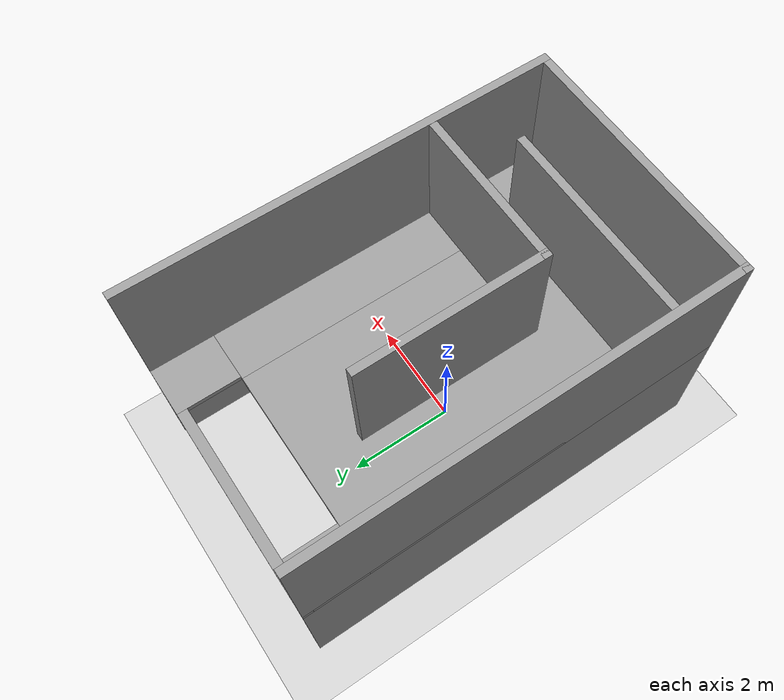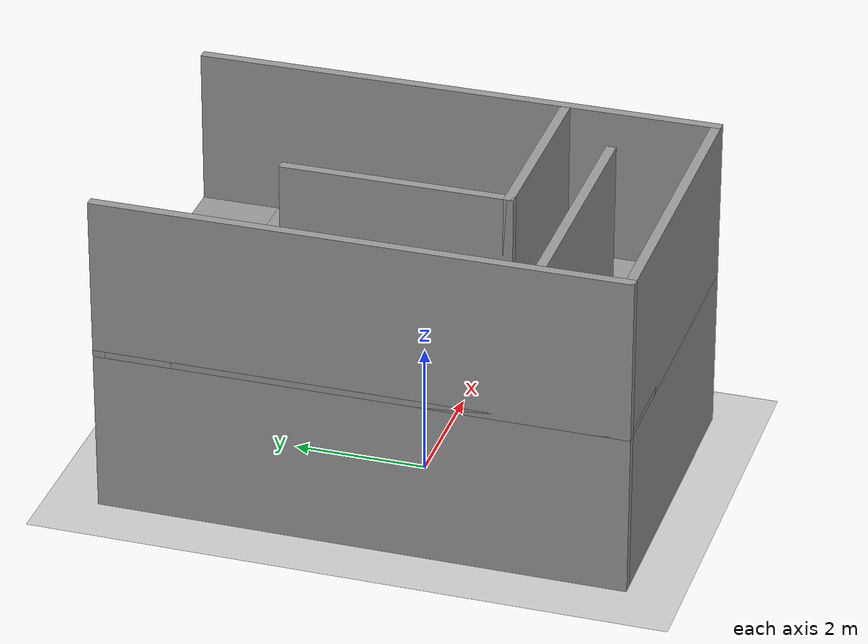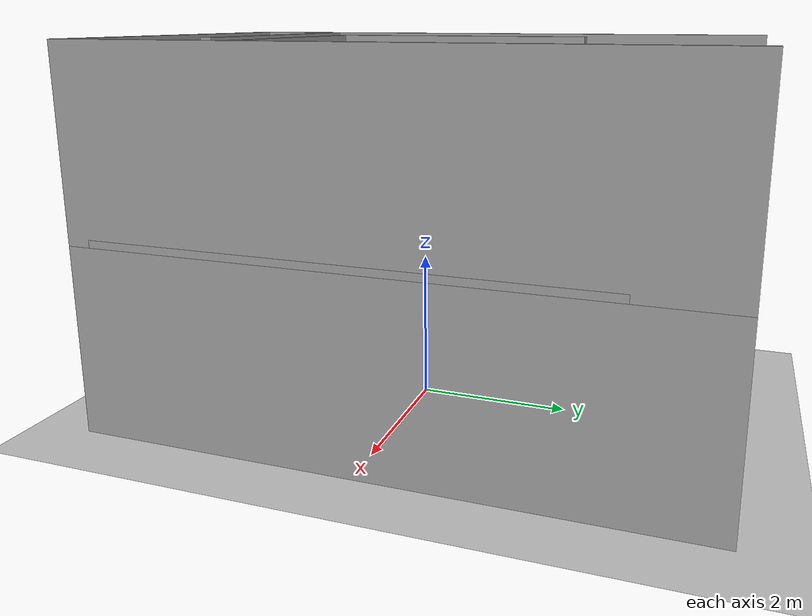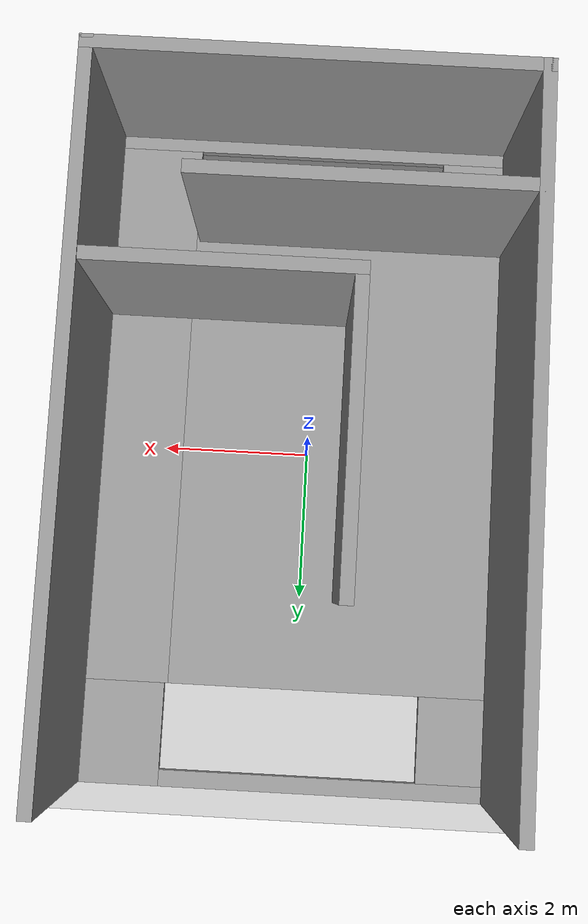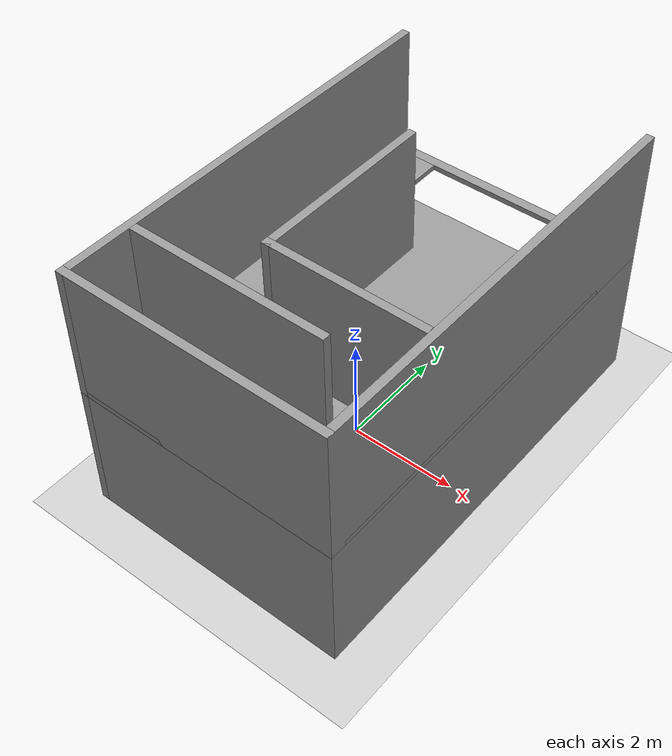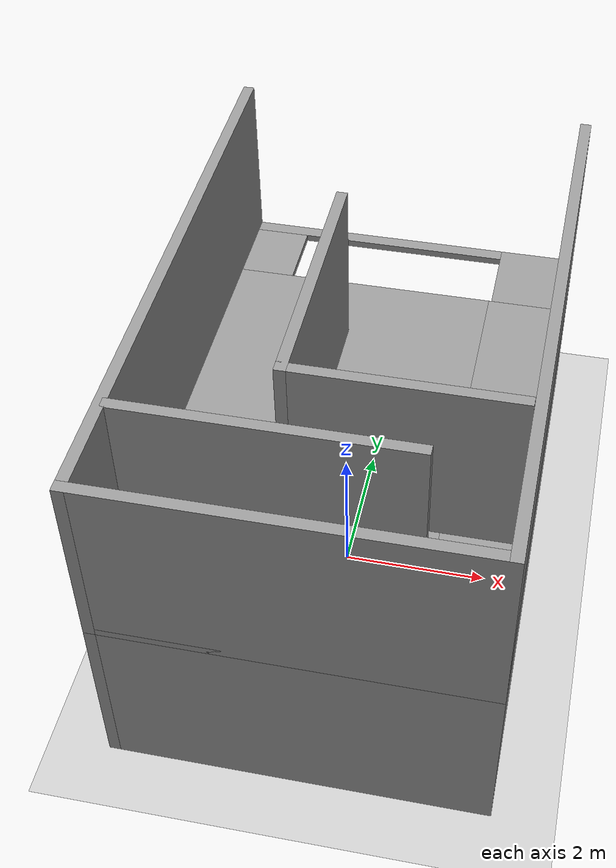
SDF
<sdf version="1.7">
 <world name="default">
  <model name="ground_plane">
   <static>1</static>
   <link name="link">
    <collision name="collision">
     <geometry><plane><normal>0 0 1</normal><size>100 100</size></plane></geometry>
     <surface>
      <contact><collide_bitmask>65535</collide_bitmask></contact>
      <friction><ode><mu>100</mu><mu2>50</mu2></ode></friction>
     </surface>
    </collision>
    <visual name="visual">
     <cast_shadows>0</cast_shadows>
     <geometry><plane><normal>0 0 1</normal><size>100 100</size></plane></geometry>
     <material>
      <script><uri>file://media/materials/scripts/gazebo.material</uri><name>Gazebo/Grey</name></script>
     </material>
    </visual>
   </link>
  </model>
  <model name="test2">
   <pose>-0.713184 1.43074 0 0 -0 1.57047</pose>
   <link name="Floor_0">
    <pose>-1.16289 -0.828418 2.5 0 -0 0</pose>
    <visual name="Floor_0_Visual_0">
     <pose>-3.84843 0 0.05 0 -0 0</pose>
     <geometry><box><size>0.303133 5 0.1</size></box></geometry>
     <material>
      <script><uri>file://media/materials/scripts/gazebo.material</uri><name>Gazebo/Grey</name></script>
      <ambient>1 1 1 1</ambient>
     </material>
     <meta><layer>1</layer></meta>
    </visual>
    <collision name="Floor_0_Collision_0">
     <geometry><box><size>0.303133 5 0.1</size></box></geometry>
     <pose>-3.84843 0 0.05 0 -0 0</pose>
    </collision>
    <visual name="Floor_0_Visual_1">
     <pose>-0.443444 -1.94023 0.05 0 -0 0</pose>
     <geometry><box><size>6.50685 1.11955 0.1</size></box></geometry>
     <material>
      <script><uri>file://media/materials/scripts/gazebo.material</uri><name>Gazebo/Grey</name></script>
      <ambient>1 1 1 1</ambient>
     </material>
     <meta><layer>1</layer></meta>
    </visual>
    <collision name="Floor_0_Collision_1">
     <geometry><box><size>6.50685 1.11955 0.1</size></box></geometry>
     <pose>-0.443444 -1.94023 0.05 0 -0 0</pose>
    </collision>
    <visual name="Floor_0_Visual_2">
     <pose>3.40499 -1.96002 0.05 0 -0 0</pose>
     <geometry><box><size>1.19002 1.07996 0.1</size></box></geometry>
     <material>
      <script><uri>file://media/materials/scripts/gazebo.material</uri><name>Gazebo/Grey</name></script>
      <ambient>1 1 1 1</ambient>
     </material>
     <meta><layer>1</layer></meta>
    </visual>
    <collision name="Floor_0_Collision_2">
     <geometry><box><size>1.19002 1.07996 0.1</size></box></geometry>
     <pose>3.40499 -1.96002 0.05 0 -0 0</pose>
    </collision>
    <visual name="Floor_0_Visual_3">
     <pose>3.90499 0.539981 0.05 0 -0 0</pose>
     <geometry><box><size>0.19002 3.92004 0.1</size></box></geometry>
     <material>
      <script><uri>file://media/materials/scripts/gazebo.material</uri><name>Gazebo/Grey</name></script>
      <ambient>1 1 1 1</ambient>
     </material>
     <meta><layer>1</layer></meta>
    </visual>
    <collision name="Floor_0_Collision_3">
     <geometry><box><size>0.19002 3.92004 0.1</size></box></geometry>
     <pose>3.90499 0.539981 0.05 0 -0 0</pose>
    </collision>
    <visual name="Floor_0_Visual_4">
     <pose>0.056556 0.559775 0.05 0 -0 0</pose>
     <geometry><box><size>5.50685 3.88045 0.1</size></box></geometry>
     <material>
      <script><uri>file://media/materials/scripts/gazebo.material</uri><name>Gazebo/Grey</name></script>
      <ambient>1 1 1 1</ambient>
     </material>
     <meta><layer>1</layer></meta>
    </visual>
    <collision name="Floor_0_Collision_4">
     <geometry><box><size>5.50685 3.88045 0.1</size></box></geometry>
     <pose>0.056556 0.559775 0.05 0 -0 0</pose>
    </collision>
    <visual name="Floor_0_Visual_5">
     <pose>3.30998 2.03998 0.05 0 -0 0</pose>
     <geometry><box><size>1 0.920038 0.1</size></box></geometry>
     <material>
      <script><uri>file://media/materials/scripts/gazebo.material</uri><name>Gazebo/Grey</name></script>
      <ambient>1 1 1 1</ambient>
     </material>
     <meta><layer>1</layer></meta>
    </visual>
    <collision name="Floor_0_Collision_5">
     <geometry><box><size>1 0.920038 0.1</size></box></geometry>
     <pose>3.30998 2.03998 0.05 0 -0 0</pose>
    </collision>
    <visual name="Floor_0_Visual_6">
     <pose>-3.19687 2.05978 0.05 0 -0 0</pose>
     <geometry><box><size>1 0.88045 0.1</size></box></geometry>
     <material>
      <script><uri>file://media/materials/scripts/gazebo.material</uri><name>Gazebo/Grey</name></script>
      <ambient>1 1 1 1</ambient>
     </material>
     <meta><layer>1</layer></meta>
    </visual>
    <collision name="Floor_0_Collision_6">
     <geometry><box><size>1 0.88045 0.1</size></box></geometry>
     <pose>-3.19687 2.05978 0.05 0 -0 0</pose>
    </collision>
   </link>
   <link name="Wall_36">
    <collision name="Wall_36_Collision">
     <geometry><box><size>5 0.15 2.5</size></box></geometry>
     <pose>0 0 1.25 0 -0 0</pose>
    </collision>
    <visual name="Wall_36_Visual">
     <pose>0 0 1.25 0 -0 0</pose>
     <geometry><box><size>5 0.15 2.5</size></box></geometry>
     <material>
      <script><uri>file://media/materials/scripts/gazebo.material</uri><name>Gazebo/Grey</name></script>
      <ambient>1 1 1 1</ambient>
     </material>
     <meta><layer>0</layer></meta>
    </visual>
    <pose>-5.08789 -0.828418 0 0 -0 -1.5708</pose>
   </link>
   <link name="Wall_37">
    <collision name="Wall_37_Collision">
     <geometry><box><size>8 0.15 2.5</size></box></geometry>
     <pose>0 0 1.25 0 -0 0</pose>
    </collision>
    <visual name="Wall_37_Visual">
     <pose>0 0 1.25 0 -0 0</pose>
     <geometry><box><size>8 0.15 2.5</size></box></geometry>
     <material>
      <script><uri>file://media/materials/scripts/gazebo.material</uri><name>Gazebo/Grey</name></script>
      <ambient>1 1 1 1</ambient>
     </material>
     <meta><layer>0</layer></meta>
    </visual>
    <pose>-1.16289 -3.25342 0 0 -0 0</pose>
   </link>
   <link name="Wall_39">
    <collision name="Wall_39_Collision">
     <geometry><box><size>8 0.15 2.5</size></box></geometry>
     <pose>0 0 1.25 0 -0 0</pose>
    </collision>
    <visual name="Wall_39_Visual">
     <pose>0 0 1.25 0 -0 0</pose>
     <geometry><box><size>8 0.15 2.5</size></box></geometry>
     <material>
      <script><uri>file://media/materials/scripts/gazebo.material</uri><name>Gazebo/Grey</name></script>
      <ambient>1 1 1 1</ambient>
     </material>
     <meta><layer>0</layer></meta>
    </visual>
    <pose>-1.16289 1.59658 0 0 -0 3.14159</pose>
   </link>
   <link name="Wall_41">
    <collision name="Wall_41_Collision">
     <geometry><box><size>3 0.15 2.5</size></box></geometry>
     <pose>0 0 1.25 0 -0 0</pose>
    </collision>
    <visual name="Wall_41_Visual">
     <pose>0 0 1.25 0 -0 0</pose>
     <geometry><box><size>3 0.15 2.5</size></box></geometry>
     <material>
      <script><uri>file://media/materials/scripts/gazebo.material</uri><name>Gazebo/Grey</name></script>
      <ambient>1 1 1 1</ambient>
     </material>
     <meta><layer>0</layer></meta>
    </visual>
    <pose>-2.84103 0.045931 0 0 -0 -1.5708</pose>
   </link>
   <link name="Wall_43">
    <collision name="Wall_43_Collision">
     <geometry><box><size>1.25 0.15 2.5</size></box></geometry>
     <pose>0 0 1.25 0 -0 0</pose>
    </collision>
    <visual name="Wall_43_Visual">
     <pose>0 0 1.25 0 -0 0</pose>
     <geometry><box><size>1.25 0.15 2.5</size></box></geometry>
     <material>
      <script><uri>file://media/materials/scripts/gazebo.material</uri><name>Gazebo/Grey</name></script>
      <ambient>1 1 1 1</ambient>
     </material>
     <meta><layer>0</layer></meta>
    </visual>
    <pose>-2.29103 -1.37907 0 0 -0 0</pose>
   </link>
   <link name="Wall_44">
    <collision name="Wall_44_Collision">
     <geometry><box><size>2 0.15 2.5</size></box></geometry>
     <pose>0 0 1.25 0 -0 0</pose>
    </collision>
    <visual name="Wall_44_Visual">
     <pose>0 0 1.25 0 -0 0</pose>
     <geometry><box><size>2 0.15 2.5</size></box></geometry>
     <material>
      <script><uri>file://media/materials/scripts/gazebo.material</uri><name>Gazebo/Grey</name></script>
      <ambient>1 1 1 1</ambient>
     </material>
     <meta><layer>0</layer></meta>
    </visual>
    <pose>-1.74103 -0.454069 0 0 -0 1.5708</pose>
   </link>
   <link name="Wall_46">
    <collision name="Wall_46_Collision">
     <geometry><box><size>1.75 0.15 2.5</size></box></geometry>
     <pose>0 0 1.25 0 -0 0</pose>
    </collision>
    <visual name="Wall_46_Visual">
     <pose>0 0 1.25 0 -0 0</pose>
     <geometry><box><size>1.75 0.15 2.5</size></box></geometry>
     <material>
      <script><uri>file://media/materials/scripts/gazebo.material</uri><name>Gazebo/Grey</name></script>
      <ambient>1 1 1 1</ambient>
     </material>
     <meta><layer>0</layer></meta>
    </visual>
    <pose>-0.000447 -1.34784 0 0 -0 0</pose>
   </link>
   <link name="Wall_50">
    <collision name="Wall_50_Collision">
     <geometry><box><size>5 0.15 2.5</size></box></geometry>
     <pose>0 0 1.25 0 -0 0</pose>
    </collision>
    <visual name="Wall_50_Visual">
     <pose>0 0 1.25 0 -0 0</pose>
     <geometry><box><size>5 0.15 2.5</size></box></geometry>
     <material>
      <script><uri>file://media/materials/scripts/gazebo.material</uri><name>Gazebo/Grey</name></script>
      <ambient>1 1 1 1</ambient>
     </material>
     <meta><layer>1</layer></meta>
    </visual>
    <pose>-5.08789 -0.828418 2.5 0 -0 -1.5708</pose>
   </link>
   <link name="Wall_51">
    <collision name="Wall_51_Collision">
     <geometry><box><size>8 0.15 2.5</size></box></geometry>
     <pose>0 0 1.25 0 -0 0</pose>
    </collision>
    <visual name="Wall_51_Visual">
     <pose>0 0 1.25 0 -0 0</pose>
     <geometry><box><size>8 0.15 2.5</size></box></geometry>
     <material>
      <script><uri>file://media/materials/scripts/gazebo.material</uri><name>Gazebo/Grey</name></script>
      <ambient>1 1 1 1</ambient>
     </material>
     <meta><layer>1</layer></meta>
    </visual>
    <pose>-1.16289 -3.25342 2.5 0 -0 0</pose>
   </link>
   <link name="Wall_53">
    <collision name="Wall_53_Collision">
     <geometry><box><size>8 0.15 2.5</size></box></geometry>
     <pose>0 0 1.25 0 -0 0</pose>
    </collision>
    <visual name="Wall_53_Visual">
     <pose>0 0 1.25 0 -0 0</pose>
     <geometry><box><size>8 0.15 2.5</size></box></geometry>
     <material>
      <script><uri>file://media/materials/scripts/gazebo.material</uri><name>Gazebo/Grey</name></script>
      <ambient>1 1 1 1</ambient>
     </material>
     <meta><layer>1</layer></meta>
    </visual>
    <pose>-1.16289 1.59658 2.5 0 -0 3.14159</pose>
   </link>
   <link name="Wall_59">
    <collision name="Wall_59_Collision">
     <geometry><box><size>3.75 0.15 2.5</size></box></geometry>
     <pose>0 0 1.25 0 -0 0</pose>
    </collision>
    <visual name="Wall_59_Visual">
     <pose>0 0 1.25 0 -0 0</pose>
     <geometry><box><size>3.75 0.15 2.5</size></box></geometry>
     <material>
      <script><uri>file://media/materials/scripts/gazebo.material</uri><name>Gazebo/Grey</name></script>
      <ambient>1 1 1 1</ambient>
     </material>
     <meta><layer>1</layer></meta>
    </visual>
    <pose>-3.79215 -0.294483 2.5 0 -0 -1.5708</pose>
   </link>
   <link name="Wall_64">
    <collision name="Wall_64_Collision">
     <geometry><box><size>3 0.15 2.5</size></box></geometry>
     <pose>0 0 1.25 0 -0 0</pose>
    </collision>
    <visual name="Wall_64_Visual">
     <pose>0 0 1.25 0 -0 0</pose>
     <geometry><box><size>3 0.15 2.5</size></box></geometry>
     <material>
      <script><uri>file://media/materials/scripts/gazebo.material</uri><name>Gazebo/Grey</name></script>
      <ambient>1 1 1 1</ambient>
     </material>
     <meta><layer>1</layer></meta>
    </visual>
    <pose>-2.8224 -1.67479 2.5 0 -0 -1.5708</pose>
   </link>
   <link name="Wall_66">
    <collision name="Wall_66_Collision">
     <geometry><box><size>3.5 0.15 2.5</size></box></geometry>
     <pose>0 0 1.25 0 -0 0</pose>
    </collision>
    <visual name="Wall_66_Visual">
     <pose>0 0 1.25 0 -0 0</pose>
     <geometry><box><size>3.5 0.15 2.5</size></box></geometry>
     <material>
      <script><uri>file://media/materials/scripts/gazebo.material</uri><name>Gazebo/Grey</name></script>
      <ambient>1 1 1 1</ambient>
     </material>
     <meta><layer>1</layer></meta>
    </visual>
    <pose>-1.1474 -0.249788 2.5 0 -0 0</pose>
   </link>
   <static>1</static>
  </model>
 </world>
</sdf>
